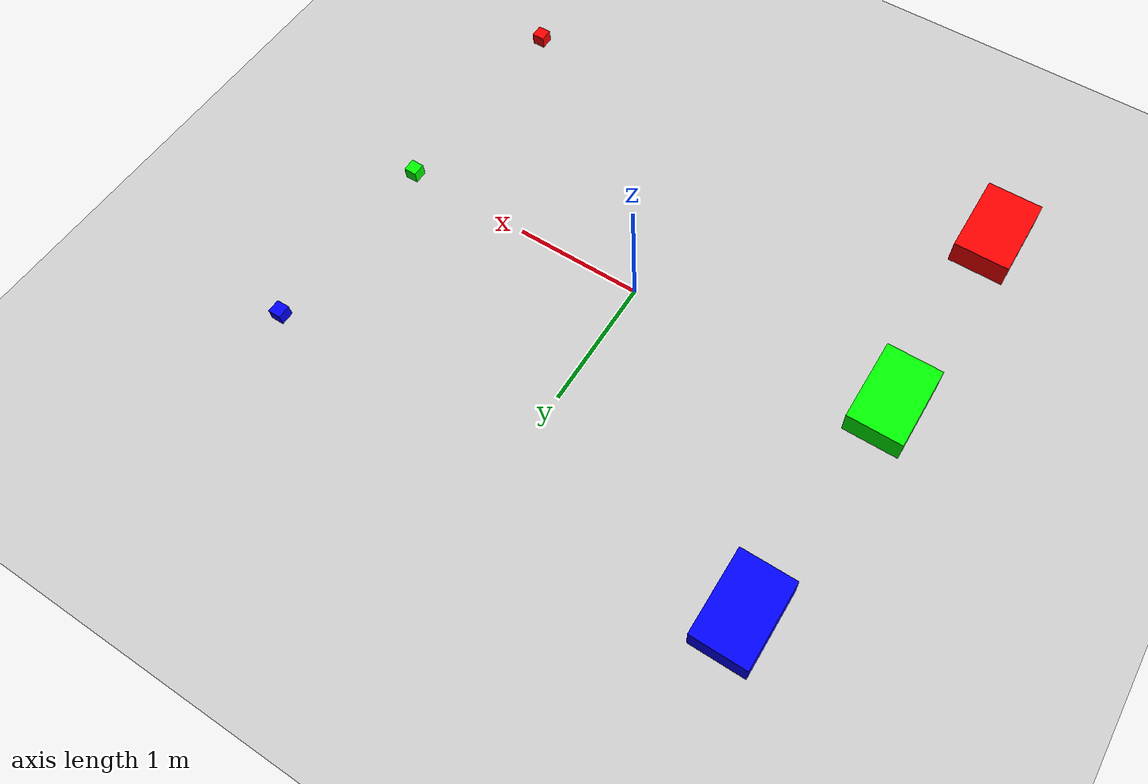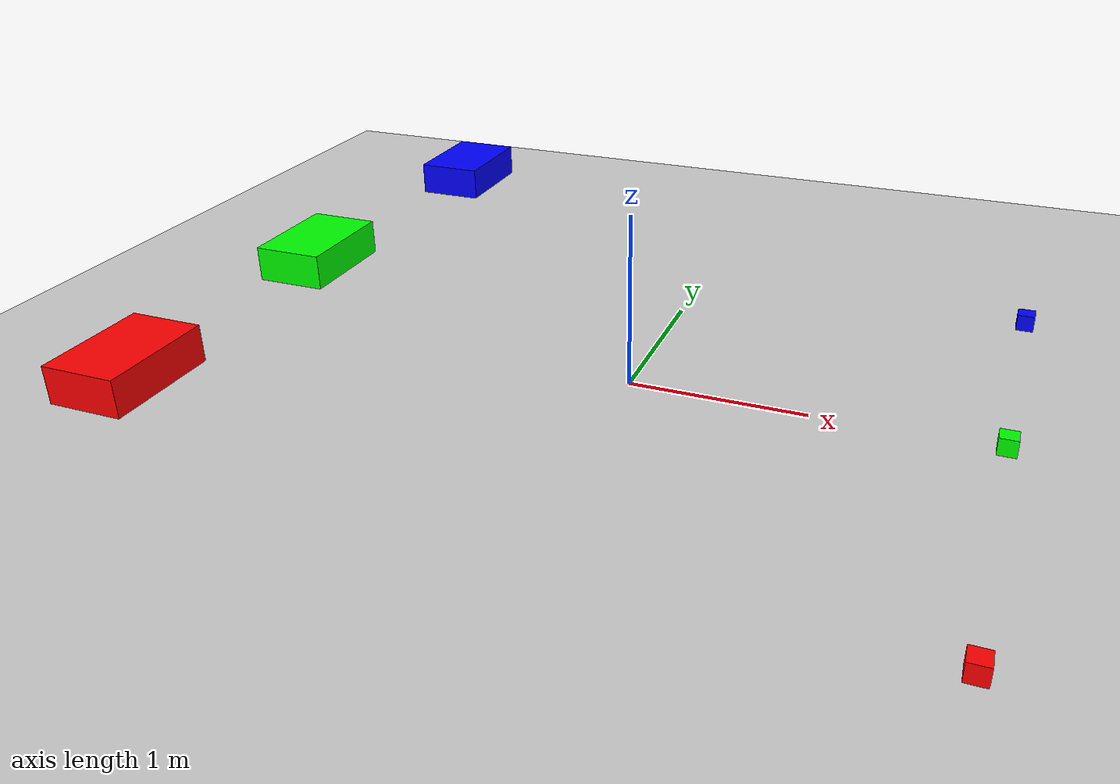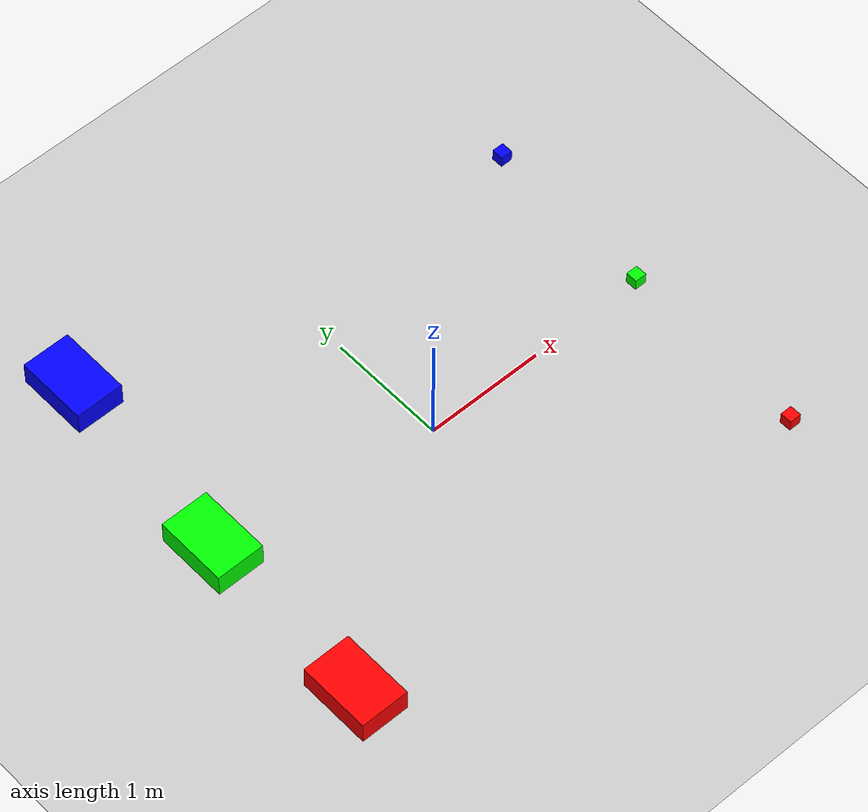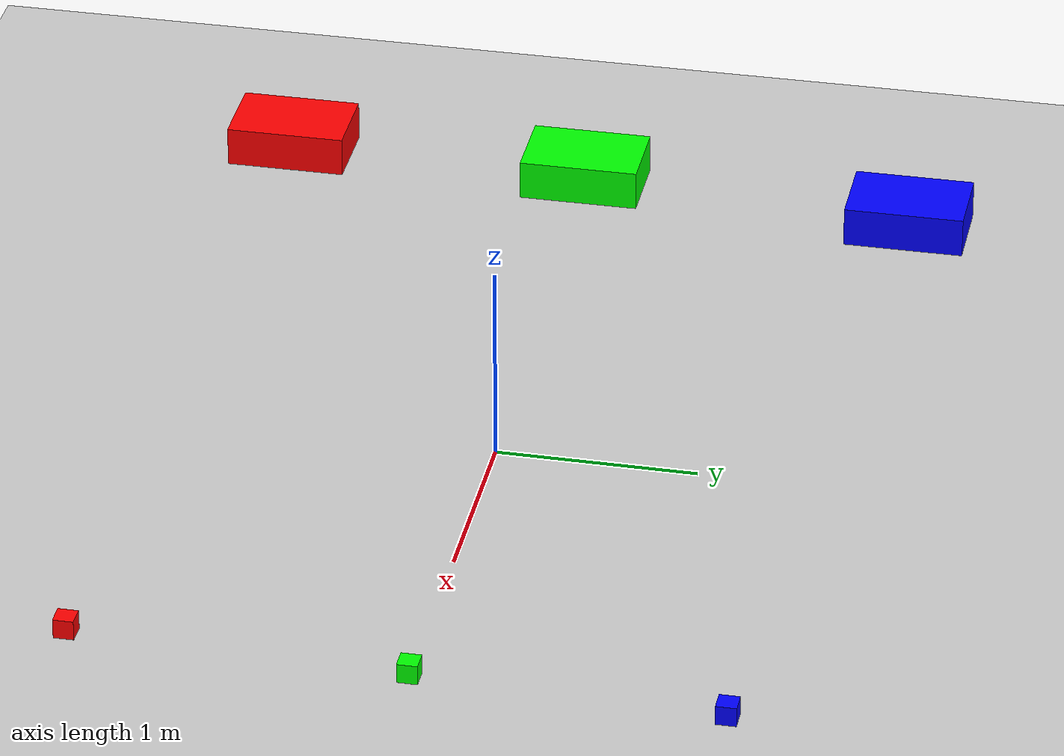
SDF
<sdf version="1.10">
 <world name="empty">
  <physics name="1ms" type="ignored">
   <max_step_size>0.001</max_step_size>
   <real_time_factor>1</real_time_factor>
   <real_time_update_rate>1000</real_time_update_rate>
  </physics>
  <plugin name="gz::sim::systems::Physics" filename="gz-sim-physics-system"/>
  <plugin name="gz::sim::systems::UserCommands" filename="gz-sim-user-commands-system"/>
  <plugin name="gz::sim::systems::SceneBroadcaster" filename="gz-sim-scene-broadcaster-system"/>
  <plugin name="gz::sim::systems::Contact" filename="gz-sim-contact-system"/>
  <plugin name="gz::sim::systems::Sensors" filename="gz-sim-sensors-system">
   <render_engine>ogre2</render_engine>
  </plugin>
  <gravity>0 0 -9.8000000000000007</gravity>
  <magnetic_field>5.5644999999999998e-06 2.2875799999999999e-05 -4.2388400000000002e-05</magnetic_field>
  <atmosphere type="adiabatic"/>
  <scene>
   <ambient>0.400000006 0.400000006 0.400000006 1</ambient>
   <background>0.699999988 0.699999988 0.699999988 1</background>
   <shadows>true</shadows>
  </scene>
  <model name="ground_plane">
   <static>true</static>
   <link name="link">
    <collision name="collision">
     <geometry><plane><normal>0 0 1</normal><size>100 100</size></plane></geometry>
    </collision>
    <visual name="visual">
     <geometry><plane><normal>0 0 1</normal><size>100 100</size></plane></geometry>
     <material>
      <ambient>0.800000012 0.800000012 0.800000012 1</ambient>
      <diffuse>0.800000012 0.800000012 0.800000012 1</diffuse>
      <specular>0.800000012 0.800000012 0.800000012 1</specular>
     </material>
    </visual>
    <inertial>
     <mass>1</mass>
     <inertia><ixx>1</ixx><ixy>0</ixy><ixz>0</ixz><iyy>1</iyy><iyz>0</iyz><izz>1</izz></inertia>
    </inertial>
   </link>
  </model>
  <model name="red_box">
   <pose>1.95 -1.65 0.049999903183337843 0 0 0</pose>
   <link name="box_link">
    <inertial>
     <inertia>
      <ixx>0.0001667</ixx>
      <ixy>0</ixy>
      <ixz>0</ixz>
      <iyy>0.0001667</iyy>
      <iyz>0</iyz>
      <izz>0.0001667</izz>
     </inertia>
     <mass>0.1</mass>
    </inertial>
    <velocity_decay><linear>0.05</linear><angular>0.2</angular></velocity_decay>
    <collision name="box_collision">
     <geometry><box><size>0.10000000000000001 0.10000000000000001 0.10000000000000001</size></box></geometry>
     <surface>
      <friction><ode><mu>20</mu><mu2>20</mu2></ode></friction>
      <bounce><restitution_coefficient>0.0</restitution_coefficient><threshold>100000</threshold></bounce>
      <contact><ode><kp>100000</kp><kd>10</kd><max_vel>0.01</max_vel><min_depth>0.001</min_depth></ode></contact>
     </surface>
    </collision>
    <visual name="box_visual">
     <geometry><box><size>0.10000000000000001 0.10000000000000001 0.10000000000000001</size></box></geometry>
     <material><ambient>1 0 0 1</ambient><diffuse>1 0 0 1</diffuse><specular>1 1 1 1</specular></material>
    </visual>
   </link>
   <static>false</static>
  </model>
  <model name="green_box">
   <pose>2.0 0 0.049999903183337843 0 0 0</pose>
   <link name="box_link">
    <inertial>
     <inertia>
      <ixx>0.0001667</ixx>
      <ixy>0</ixy>
      <ixz>0</ixz>
      <iyy>0.0001667</iyy>
      <iyz>0</iyz>
      <izz>0.0001667</izz>
     </inertia>
     <mass>0.1</mass>
    </inertial>
    <velocity_decay><linear>0.05</linear><angular>0.2</angular></velocity_decay>
    <collision name="box_collision">
     <geometry><box><size>0.10000000000000001 0.10000000000000001 0.10000000000000001</size></box></geometry>
     <surface>
      <friction><ode><mu>20</mu><mu2>20</mu2></ode></friction>
      <bounce><restitution_coefficient>0.0</restitution_coefficient><threshold>100000</threshold></bounce>
      <contact><ode><kp>100000</kp><kd>10</kd><max_vel>0.01</max_vel><min_depth>0.001</min_depth></ode></contact>
     </surface>
    </collision>
    <visual name="box_visual">
     <geometry><box><size>0.10000000000000001 0.10000000000000001 0.10000000000000001</size></box></geometry>
     <material><ambient>0 1 0 1</ambient><diffuse>0 1 0 1</diffuse><specular>1 1 1 1</specular></material>
    </visual>
   </link>
   <static>false</static>
  </model>
  <model name="blue_box">
   <pose>2.05 1.5 0.049999903183337843 0 0 0</pose>
   <link name="box_link">
    <inertial>
     <inertia>
      <ixx>0.0001667</ixx>
      <ixy>0</ixy>
      <ixz>0</ixz>
      <iyy>0.0001667</iyy>
      <iyz>0</iyz>
      <izz>0.0001667</izz>
     </inertia>
     <mass>0.1</mass>
    </inertial>
    <velocity_decay><linear>0.05</linear><angular>0.2</angular></velocity_decay>
    <collision name="box_collision">
     <geometry><box><size>0.10000000000000001 0.10000000000000001 0.10000000000000001</size></box></geometry>
     <surface>
      <friction><ode><mu>20</mu><mu2>20</mu2></ode></friction>
      <bounce><restitution_coefficient>0.0</restitution_coefficient><threshold>100000</threshold></bounce>
      <contact><ode><kp>100000</kp><kd>10</kd><max_vel>0.01</max_vel><min_depth>0.001</min_depth></ode></contact>
     </surface>
    </collision>
    <visual name="box_visual">
     <geometry><box><size>0.10000000000000001 0.10000000000000001 0.10000000000000001</size></box></geometry>
     <material><ambient>0 0 1 1</ambient><diffuse>0 0 1 1</diffuse><specular>1 1 1 1</specular></material>
    </visual>
   </link>
   <static>false</static>
  </model>
  <model name="red_bin">
   <pose>-2.05 -1.48 0.49999999990199806 0 0 0</pose>
   <link name="box_link">
    <inertial>
     <inertia><ixx>0.16666</ixx><ixy>0</ixy><ixz>0</ixz><iyy>0.16666</iyy><iyz>0</iyz><izz>0.16666</izz></inertia>
     <mass>1</mass>
    </inertial>
    <collision name="box_collision"><geometry><box><size>0.4 0.6 0.2</size></box></geometry></collision>
    <visual name="box_visual">
     <geometry><box><size>0.4 0.6 0.2</size></box></geometry>
     <material><ambient>1 0 0 1</ambient><diffuse>1 0 0 1</diffuse><specular>1 1 1 1</specular></material>
    </visual>
   </link>
   <static>false</static>
  </model>
  <model name="green_bin">
   <pose>-2.0 0.06 0.49999999990199806 0 0 0</pose>
   <link name="box_link">
    <inertial>
     <inertia><ixx>0.16666</ixx><ixy>0</ixy><ixz>0</ixz><iyy>0.16666</iyy><iyz>0</iyz><izz>0.16666</izz></inertia>
     <mass>1</mass>
    </inertial>
    <collision name="box_collision"><geometry><box><size>0.4 0.6 0.2</size></box></geometry></collision>
    <visual name="box_visual">
     <geometry><box><size>0.4 0.6 0.2</size></box></geometry>
     <material><ambient>0 1 0 1</ambient><diffuse>0 1 0 1</diffuse><specular>1 1 1 1</specular></material>
    </visual>
   </link>
   <static>false</static>
  </model>
  <model name="blue_bin">
   <pose>-1.85 1.75 0.49999999990199806 0 0 0</pose>
   <link name="box_link">
    <inertial>
     <inertia><ixx>0.16666</ixx><ixy>0</ixy><ixz>0</ixz><iyy>0.16666</iyy><iyz>0</iyz><izz>0.16666</izz></inertia>
     <mass>1</mass>
    </inertial>
    <collision name="box_collision"><geometry><box><size>0.4 0.6 0.2</size></box></geometry></collision>
    <visual name="box_visual">
     <geometry><box><size>0.4 0.6 0.2</size></box></geometry>
     <material><ambient>0 0 1 1</ambient><diffuse>0 0 1 1</diffuse><specular>1 1 1 1</specular></material>
    </visual>
   </link>
   <static>false</static>
  </model>
  <light name="sun" type="directional">
   <pose>0 0 10 0 0 0</pose>
   <intensity>1</intensity>
   <direction>-0.5 0.10000000000000001 -0.90000000000000002</direction>
   <diffuse>0.800000012 0.800000012 0.800000012 1</diffuse>
   <specular>0.200000003 0.200000003 0.200000003 1</specular>
   <attenuation>
    <range>1000</range>
    <linear>0.01</linear>
    <constant>0.90000000000000002</constant>
    <quadratic>0.001</quadratic>
   </attenuation>
   <spot><inner_angle>0</inner_angle><outer_angle>0</outer_angle><falloff>0</falloff></spot>
  </light>
 </world>
</sdf>
